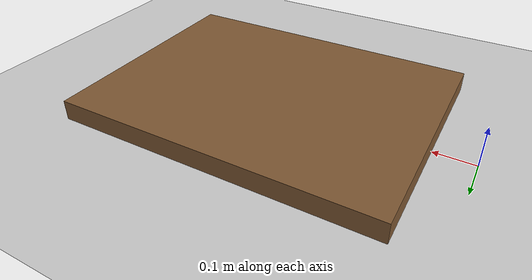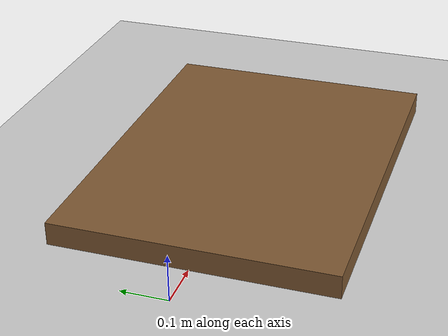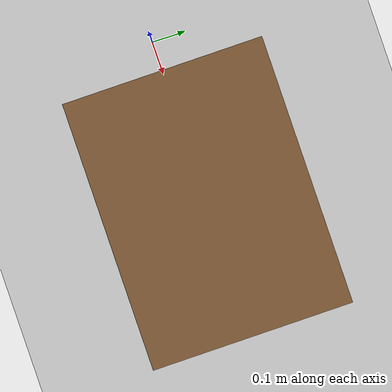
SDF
<?xml version="1.0"?>
<sdf version="1.6">
  <world name="block_stacking_world">
    <!-- Physics -->
    <physics name="1ms" type="ode">
      <max_step_size>0.001</max_step_size>
      <real_time_factor>1.0</real_time_factor>
      <real_time_update_rate>1000</real_time_update_rate>
    </physics>

    <!-- Ground plane -->
    <include>
      <uri>https://fuel.ignitionrobotics.org/1.0/OpenRobotics/models/Ground Plane</uri>
    </include>

    <!-- Lighting -->
    <include>
      <uri>https://fuel.ignitionrobotics.org/1.0/OpenRobotics/models/Sun</uri>
    </include>

    <!-- Work table for block stacking -->
    <model name="work_table">
      <static>true</static>
      <pose>0.5 0 0.025 0 0 0</pose>
      <link name="table_link">
        <collision name="table_collision">
          <geometry>
            <box>
              <size>0.8 0.6 0.05</size>
            </box>
          </geometry>
        </collision>
        <visual name="table_visual">
          <geometry>
            <box>
              <size>0.8 0.6 0.05</size>
            </box>
          </geometry>
          <material>
            <ambient>0.5 0.35 0.2 1</ambient>
            <diffuse>0.5 0.35 0.2 1</diffuse>
          </material>
        </visual>
      </link>
    </model>
  </world>
</sdf>
